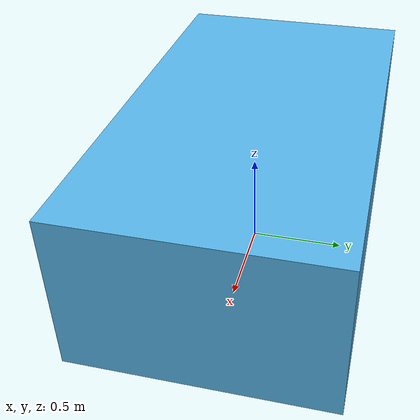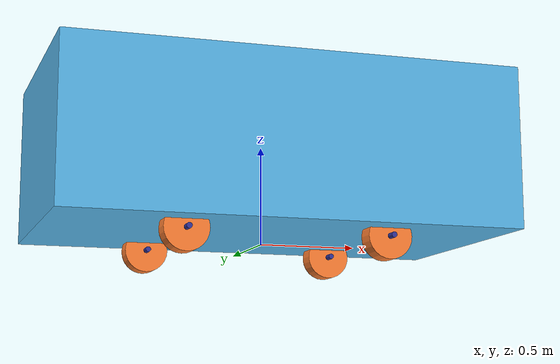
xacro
<?xml version="1.0"?>
<robot name="$(env ROBOT_NAME)" xmlns:xacro="http://ros.org/wiki/xacro">

    <ros2_control name="GazeboSimSystem" type="system">
        <hardware>
            <plugin>gz_ros2_control/GazeboSimSystem</plugin>
        </hardware>
        <joint name="front_steering">
            <command_interface name="position"/>
            <state_interface name="position">
                <param name="initial_value">0.0</param>
            </state_interface>
            <state_interface name="velocity"/>
        </joint>
        <joint name="front_traction">
            <command_interface name="velocity">
                <param name="min">-20</param>
                <param name="max">20</param>
            </command_interface>
            <state_interface name="position">
                <param name="initial_value">0.0</param>
            </state_interface>
            <state_interface name="velocity"/>
        </joint>

        <joint name="rear_steering">
            <command_interface name="position"/>
            <state_interface name="position">
                <param name="initial_value">0.0</param>
            </state_interface>
            <state_interface name="velocity"/>
        </joint>
        <joint name="rear_traction">
            <command_interface name="velocity">
                <param name="min">-20</param>
                <param name="max">20</param>
            </command_interface>
            <state_interface name="position">
                <param name="initial_value">0.0</param>
            </state_interface>
            <state_interface name="velocity"/>
        </joint>

    </ros2_control>

    <gazebo>
        <!-- Joint state publisher -->
        <plugin filename="gz_ros2_control-system" name="gz_ros2_control::GazeboSimROS2ControlPlugin">
            <ros>
                <namespace>$(arg robot_name)</namespace>
            </ros>
            <parameters>$(find mobotic_simulation)/config/two-wheels-controllers.yaml</parameters>
        </plugin>

        <plugin filename="gz-sim-pose-publisher-system"
                name="gz::sim::systems::PosePublisher">
            <publish_link_pose>false</publish_link_pose>
            <publish_nested_model_pose>true</publish_nested_model_pose>
            <use_pose_vector_msg>true</use_pose_vector_msg>
            <update_frequency>50</update_frequency>
        </plugin>
    </gazebo>

    <!-- Base names -->
    <xacro:arg name="robot_name" default="$(env ROBOT_NAME)" />
    <xacro:arg name="base_link_frame_id" default="base_link" />
    <xacro:arg name="odometry_topic" default="odometry" />
    <xacro:arg name="odometry_frame_id" default="odom" />

    <!-- Include vehicle xacros -->
    <xacro:include filename="$(find mobotic_simulation)/urdf/trans.urdf.xacro"/>
    <xacro:include filename="$(find mobotic_simulation)/urdf/wheels.urdf.xacro"/>
    <xacro:include filename="$(find mobotic_simulation)/urdf/inertia.urdf.xacro"/>
    <xacro:include filename="$(find mobotic_simulation)/urdf/materials.urdf.xacro"/>

    <!-- Define a base for the robot spawn it on 0,0,0 -->
    <link name="base_link"/>

    <!-- Forklift parts -->
    <link name="mast">
        <visual>
            <origin xyz="0 0 0.45" rpy="0 0 0"/>
            <geometry>
                <box size="2.3 1.3 0.82"/>
            </geometry>
        </visual>
        <collision>
            <origin xyz="0 0 0.82" rpy="0 0 0"/>
            <geometry>
                <box size="2.3 1.3 0.82"/>
            </geometry>
        </collision>
        <inertial>
            <origin xyz="0 0 0.82"/>
            <mass value="100"/>
            <xacro:box_inertia m="100" x="2.3" y="1.3" z="0.82"/>
        </inertial>
    </link>

    <joint name="base_link_to_mast" type="fixed">
        <parent link="base_link"/>
        <child link="mast"/>
        <origin xyz="0 0 0"/>
    </joint>

    <!-- Wheels -->
    <xacro:wheel_actuated
            name="front"
            parent="base_link"
            xyz="0.51 -0.44 0"
            rpy="0 0 3.14159"
            radius="0.1125"
            length="0.1"
            friction="1.0"
            damping="1.0"
            mu1="1.0"
            mu2="1.0"/>

    <xacro:wheel_castor
            name="front_castor"
            parent="base_link"
            xyz="0.51 0.44 0"
            rpy="0 0 0"
            radius="0.1125"
            length="0.1"
            friction="0.0"
            damping="0.0"
            mu1="0.01"
            mu2="0.01"/>

    <xacro:wheel_castor
            name="rear_castor"
            parent="base_link"
            xyz="-0.51 -0.44 0"
            rpy="0 0 0"
            radius="0.1125"
            length="0.1"
            friction="0.0"
            damping="0.0"
            mu1="0.01"
            mu2="0.01"/>

    <xacro:wheel_actuated
            name="rear"
            parent="base_link"
            xyz="-0.51 0.44 0"
            rpy="0 0 0.0"
            radius="0.1125"
            length="0.1"
            friction="1.0"
            damping="1.0"
            mu1="1.0"
            mu2="1.0"/>

</robot>

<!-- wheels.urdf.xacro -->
<!-- Macros for front for robot wheels -->
<robot xmlns:xacro="http://ros.org/wiki/xacro">

  <xacro:macro name="wheel" params="name parent xyz rpy radius length friction damping mu1 mu2">

    <!-- Wheel -->
    <link name="${name}_wheel">
      <visual name="${name}_wheel_visual">
        <origin xyz="0 0 0" rpy="${pi/2} 0 0"/>
        <geometry name="{name}_wheel_geometry">
          <cylinder radius="${radius}" length="${length}"/>
        </geometry>
        <material name="orange"/>
      </visual>
      <collision>
        <origin xyz="0 0 0" rpy="${pi/2} 0 0"/>
        <geometry>
          <sphere radius="${radius}"/>
        </geometry>
      </collision>
      <xacro:cylinder_inertial radius="${radius}" length="${length}" mass="30.0" rpy="${pi/2} 0 0"/>
    </link>

    <gazebo reference="${name}_wheel">
      <material value="Gazebo/Wood"/>
    </gazebo>

    <joint name="${name}_traction" type="continuous">
      <origin xyz="${xyz}" rpy="${rpy}"/>
      <parent link="${parent}"/>
      <child link="${name}_wheel"/>
      <axis xyz="0 1 0"/>
      <anchor xyz="0 0 0"/>
      <limit effort="100" velocity="100" k_velocity="10"/>
      <joint_properties damping="${damping}" friction="${friction}"/>
    </joint>

    <gazebo reference="${name}_wheel">
      <minDepth value="0.00065"/>
      <kp value="10000000.0" />
      <kd value="1.0" />
      <mu1 value="${mu1}" />
      <mu2 value="${mu2}" />
      <fdir1> 1 0 0 </fdir1>
    </gazebo>
  </xacro:macro>

  <xacro:macro name="wheel_actuated" params="name parent xyz rpy radius length friction damping mu1 mu2">
    <link name="${name}_steering_link">
      <visual name="${name}_visual">
        <origin xyz="0 0 0" rpy="${pi/2} 0 0"/>
        <geometry name="${name}_geometry">
          <cylinder radius="${radius / 8.0}" length="${length * 2}"/>
        </geometry>
        <material name="blue"/>
      </visual>
      <xacro:cylinder_inertial radius="${radius / 8.0}" length="${length* 2}" mass="1.0" rpy="${pi/2} 0 0"/>
    </link>
    <gazebo reference="${name}_steering_link">
      <material value="Gazebo/Blue"/>
    </gazebo>

    <!-- steering joint -->
    <joint name="${name}_steering" type="continuous">
      <origin xyz="${xyz}" rpy="${rpy}"/>
      <parent link="${parent}"/>
      <child link="${name}_steering_link"/>
      <axis xyz="0 0 1"/>
      <anchor xyz="0 0 0"/>
      <limit lower="-1.5707963267948966" upper="1.5707963267948966" effort="100" velocity="100" k_velocity="0"/>
      <joint_properties damping="1.0" friction="1.0"/>
    </joint>

    <!-- traction joint -->
    <xacro:wheel name="${name}"  parent="${name}_steering_link"  xyz="0 0 0" rpy="0 0 0" radius="${radius}" length="${length}" friction="${friction}" damping="${damping}" mu1="${mu1}" mu2="${mu2}"/>
  </xacro:macro>

  <xacro:macro name="wheel_castor" params="name parent xyz rpy radius length friction damping mu1 mu2">
    <link name="${name}_steering_link">
      <visual name="${name}_visual">
        <origin xyz="0 0 0" rpy="${pi/2} 0 0"/>
        <geometry name="${name}_geometry">
          <cylinder radius="${radius / 8.0}" length="${length * 2}"/>
        </geometry>
        <material name="blue"/>
      </visual>
      <xacro:cylinder_inertial radius="${radius / 8.0}" length="${length* 2}" mass="1.0" rpy="${pi/2} 0 0"/>
    </link>
    <gazebo reference="${name}_steering_link">
      <material value="Gazebo/Blue"/>
    </gazebo>

    <!-- steering joint -->
    <joint name="${name}_steering" type="continuous">
      <origin xyz="${xyz}" rpy="${rpy}"/>
      <parent link="${parent}"/>
      <child link="${name}_steering_link"/>
      <axis xyz="0 0 1"/>
      <anchor xyz="0 0 0"/>
      <joint_properties damping="0.0" friction="0.0"/>
    </joint>

    <!-- traction joint -->
    <xacro:wheel name="${name}"  parent="${name}_steering_link"  xyz="0 0 0" rpy="0 0 0" radius="${radius}" length="${length}" friction="${friction}" damping="${damping}" mu1="${mu1}" mu2="${mu2}"/>
  </xacro:macro>
</robot>

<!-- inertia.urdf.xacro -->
<!-- Macros for robot inertias -->
<robot xmlns:xacro="http://ros.org/wiki/xacro">
  <!-- Macros for simple inertias -->
  <xacro:macro name="box_inertia" params="m x y z">
    <inertia  ixx="${m*(y*y+z*z)/12}" ixy = "0" ixz = "0"
              iyy="${m*(x*x+z*z)/12}" iyz = "0"
              izz="${m*(x*x+y*y)/12}" />
  </xacro:macro>

  <xacro:macro name="cylinder_inertial" params="mass radius length rpy">
    <inertial>
      <mass value="${mass}" />
      <origin xyz="0 0 0" rpy="${rpy}"/>
      <inertia ixx="${mass * (3 * radius * radius + length * length) / 12}" ixy="0.0" ixz="0.0"
        iyy="${mass * (3 * radius * radius + length * length) / 12}" iyz="0.0"
        izz="${mass * radius * radius / 2}" />
    </inertial>
  </xacro:macro>

   <xacro:macro name="inertial_sphere" params="mass diameter">
    <inertial>
      <mass value="${mass}" />
      <origin xyz="0 0 0" />
      <inertia ixx="${(2/5) * mass * ( (diameter*0.5) * (diameter*0.5) )}" ixy="0.0" ixz="0.0"
               iyy="${(2/5) * mass * ( (diameter*0.5) * (diameter*0.5) )}" iyz="0.0"
               izz="${(2/5) * mass * ( (diameter*0.5) * (diameter*0.5) )}" />
    </inertial>
  </xacro:macro>
</robot>

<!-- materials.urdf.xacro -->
<robot>
  <material name="orange">
    <color rgba="1.0 0.5 0.2 1" />
  </material>
  <material name="red">
    <color rgba="0.7 0.2 0.2 1" />
  </material>
  <material name="blue">
    <color rgba="0.2 0.2 0.6 1" />
  </material>
  <material name="yellow">
    <color rgba="1.0 1.0 0.0 1" />
  </material>
</robot>
